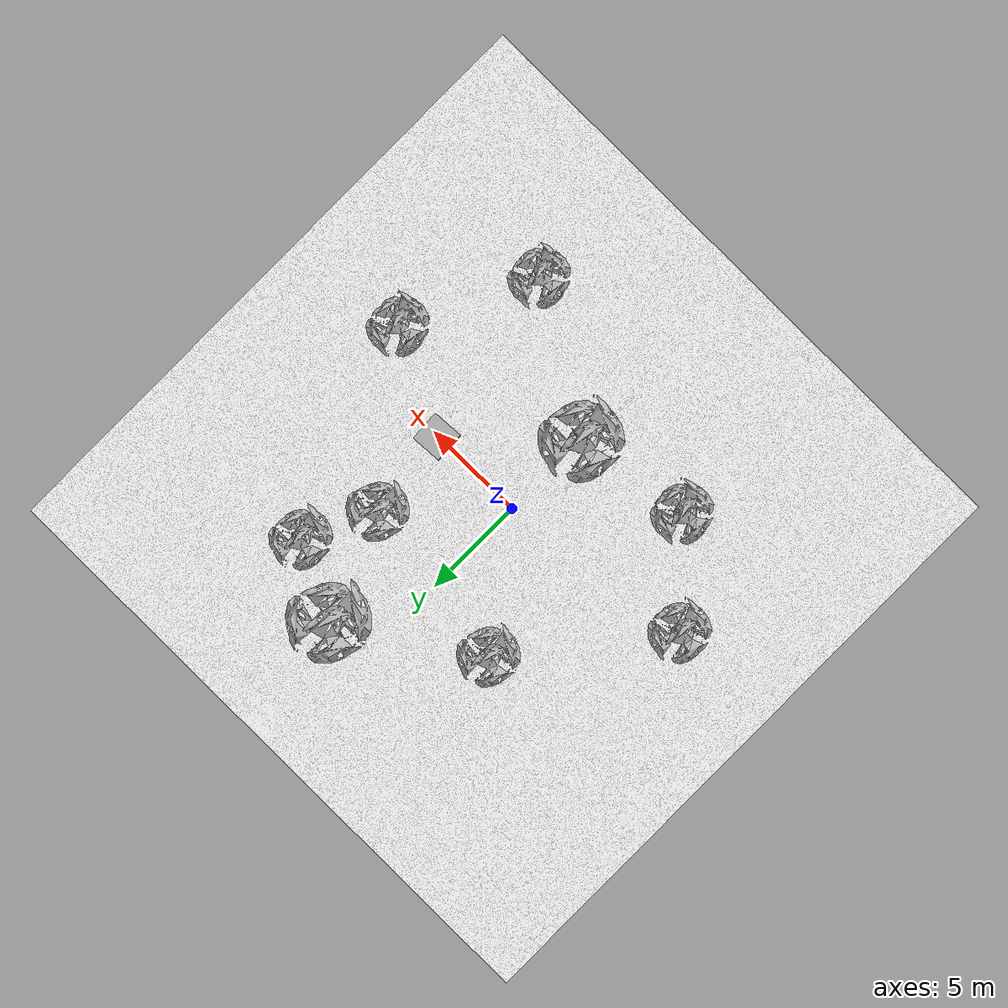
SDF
<?xml version="1.0" encoding="UTF-8" ?>
<sdf version="1.4">
  <world name="default">
    <scene>
      <ambient>0.5 0.5 0.5 1</ambient>
      <background>0.5 0.5 0.5 1</background>
      <shadows>false</shadows>
    </scene>
    <physics type="ode">
      <gravity>0 0 -9.81</gravity>
      <ode>
        <solver>
          <type>quick</type>
          <iters>10</iters>
          <sor>1.3</sor>
        </solver>
        <constraints>
          <cfm>0.0</cfm>
          <erp>0.2</erp>
          <contact_max_correcting_vel>10</contact_max_correcting_vel>
          <contact_surface_layer>0.001</contact_surface_layer>
        </constraints>
      </ode>
      <max_step_size>0.001</max_step_size>
    </physics>
    <light type="directional" name="directional_light_1">
      <pose>0 20 20 0.1 0.1 0</pose>
      <diffuse>1 1 1 1</diffuse>
      <specular>1 1 1 1</specular>
      <attenuation>
        <range>300</range>
      </attenuation>
      <direction>0.1 0.1 -1</direction>
      <cast_shadows>false</cast_shadows>
    </light>
    <spherical_coordinates>
      <surface_model>EARTH_WGS84</surface_model>
      <latitude_deg>0</latitude_deg>
      <longitude_deg>0</longitude_deg>
      <elevation>0</elevation>
      <heading_deg>0</heading_deg>
    </spherical_coordinates>
    <include>
      <uri>model://scenario2</uri>
      <name>landscape</name>
      <pose>-15.0 -15.0 0.5 0 0 0</pose>
    </include>

    <!-- Trees!!! -->

    <include>
      <uri>model://OliveTree1</uri>
      <name>tree1</name>
      <pose>3 3 0.1 0 0 0</pose>
    </include>

    <include>
      <uri>model://OliveTree1</uri>
      <name>tree2</name>
      <pose>5 6 0.2 0 0 0.3</pose>
    </include>

    <include>
      <uri>model://OliveTree2</uri>
      <name>tree3</name>
      <pose>1 8 0.4 0 0 0</pose>
    </include>

    <include>
      <uri>model://OliveTree1</uri>
      <name>tree4</name>
      <pose>-5 4 0.3 0 0 0.1</pose>
    </include>

    <include>
      <uri>model://OliveTree1</uri>
      <name>tree5</name>
      <pose>-10 -3 0.6 0 0 0.3</pose>
    </include>

    <include>
      <uri>model://OliveTree1</uri>
      <name>tree6</name>
      <pose>-6 -7 0.52 0 0 0.5</pose>
    </include>

    <include>
      <uri>model://OliveTree2</uri>
      <name>tree7</name>
      <pose>-1 -6 0.3 0 0 0.2</pose>
    </include>

    <include>
      <uri>model://OliveTree1</uri>
      <name>tree8</name>
      <pose>9 -4 0.0 0 0 0.5</pose>
    </include>

     <include>
      <uri>model://OliveTree1</uri>
      <name>tree9</name>
      <pose>6 -10 0.3 0 0 0.5</pose>
    </include>
    <model name='textured_shapes_c'>
      <pose>4.577162 1.575164 1.501634 -0.001606 0.000826 0.059386</pose>
      <link name='box'>
        <pose>0 -1.5 0 0 -0 0</pose>
        <collision name='collision'>
          <geometry>
            <box>
              <size>1.5 1.5 1.5</size>
            </box>
          </geometry>
          <max_contacts>10</max_contacts>
          <surface>
            <contact>
              <ode/>
            </contact>
            <bounce/>
            <friction>
              <torsional>
                <ode/>
              </torsional>
              <ode/>
            </friction>
          </surface>
        </collision>
        <visual name='visual'>
          <geometry>
            <box>
              <size>1.5 1.5 1.5</size>
            </box>
          </geometry>
          <material>
            <script>
              <uri>model://textured_shapes(copy)/materials/scripts</uri>
              <uri>model://textured_shapes(copy)/materials/textures</uri>
              <name>TexturedShape/APtag</name>
            </script>
          </material>
        </visual>
        <self_collide>0</self_collide>
        <inertial>
          <pose>0 0 0 0 -0 0</pose>
          <inertia>
            <ixx>1</ixx>
            <ixy>0</ixy>
            <ixz>0</ixz>
            <iyy>1</iyy>
            <iyz>0</iyz>
            <izz>1</izz>
          </inertia>
          <mass>1</mass>
        </inertial>
        <enable_wind>0</enable_wind>
        <kinematic>0</kinematic>
      </link>
    </model>
    <model name='textured_shapes_c'>
      <pose>4.577162 1.575164 1.501634 -0.001606 0.000826 0.059386</pose>
      <link name='box'>
        <pose>0 -1.5 0 0 -0 0</pose>
        <collision name='collision'>
          <geometry>
            <box>
              <size>1.5 1.5 1.5</size>
            </box>
          </geometry>
          <max_contacts>10</max_contacts>
          <surface>
            <contact>
              <ode/>
            </contact>
            <bounce/>
            <friction>
              <torsional>
                <ode/>
              </torsional>
              <ode/>
            </friction>
          </surface>
        </collision>
        <visual name='visual'>
          <geometry>
            <box>
              <size>1.5 1.5 1.5</size>
            </box>
          </geometry>
          <material>
            <script>
              <uri>model://textured_shapes(copy)/materials/scripts</uri>
              <uri>model://textured_shapes(copy)/materials/textures</uri>
              <name>TexturedShape/APtag</name>
            </script>
          </material>
        </visual>
        <self_collide>0</self_collide>
        <inertial>
          <pose>0 0 0 0 -0 0</pose>
          <inertia>
            <ixx>1</ixx>
            <ixy>0</ixy>
            <ixz>0</ixz>
            <iyy>1</iyy>
            <iyz>0</iyz>
            <izz>1</izz>
          </inertia>
          <mass>1</mass>
        </inertial>
        <enable_wind>0</enable_wind>
        <kinematic>0</kinematic>
      </link>
    </model>
    <model name='textured_shapes_c'>
        <pose>2.43455 1.22622 1 0 -0 -0.054698</pose>
        <scale>1.5 1.5 1.5</scale>
        <link name='box'>
          <pose>2.35254 -0.271539 1 0 -0 -0.054698</pose>
          <velocity>0 0 0 0 -0 0</velocity>
          <acceleration>0 -0 0 0 -0 0</acceleration>
          <wrench>0 -0 0 0 -0 0</wrench>
        </link>
    </model>
  </world>
</sdf>

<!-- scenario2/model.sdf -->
<sdf version="1.5">
  <model name="scenario2">
      <link name="scenario2_link">
        <collision name="scenario2_collision">
          <geometry>
            <mesh>
	          <uri>model://scenario2/meshes/scenario2.dae</uri>
              <scale>1 1 0.005</scale>
            </mesh>
          </geometry>
        </collision>
        <visual name="scenario2_visual">
          <geometry>
            <mesh>
	          <uri>model://scenario2/meshes/scenario2.dae</uri>
              <scale>1 1 0.005</scale>
            </mesh>
          </geometry>
          <cast_shadows>false</cast_shadows>
        </visual>
      </link>
      <static>true</static>
    </model>
</sdf>

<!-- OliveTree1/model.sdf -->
<sdf version="1.5">
  <model name="OliveTree1">
      <static>true</static>
      <link name="OliveTree1_link">
	  <collision name="OliveTree1_collision">
	      <geometry>
		  <mesh>
		    <uri>model://OliveTree1/meshes/OliveTree1.dae</uri>
		    <scale>1 1 1</scale>
		  </mesh>
	      </geometry>
	  </collision>
	  <visual name="OliveTree1_visual">
	      <geometry>
		<mesh>
		  <uri>model://OliveTree1/meshes/OliveTree1.dae</uri>
		  <scale>1 1 1</scale>
		</mesh>
	      </geometry>
	      <cast_shadows>false</cast_shadows>
	  </visual>
      </link>
    </model>
</sdf>

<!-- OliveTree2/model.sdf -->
<sdf version="1.5">
  <model name="OliveTree2">
      <static>true</static>
      <link name="OliveTree2_link">
	  <collision name="OliveTree2_collision">
	      <geometry>
		  <mesh>
		    <uri>model://OliveTree2/meshes/OliveTree2.dae</uri>
		    <scale>1 1 1</scale>
		  </mesh>
	      </geometry>
	  </collision>
	  <visual name="OliveTree2_visual">
	      <geometry>
		<mesh>
		  <uri>model://OliveTree2/meshes/OliveTree2.dae</uri>
		  <scale>1 1 1</scale>
		</mesh>
	      </geometry>
	      <cast_shadows>false</cast_shadows>
	  </visual>
      </link>
    </model>
</sdf>
